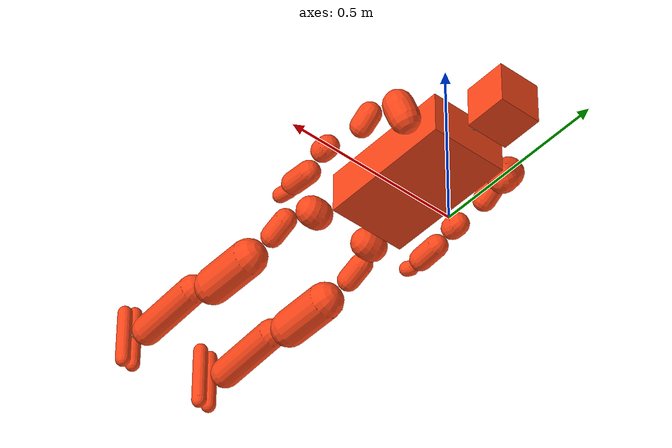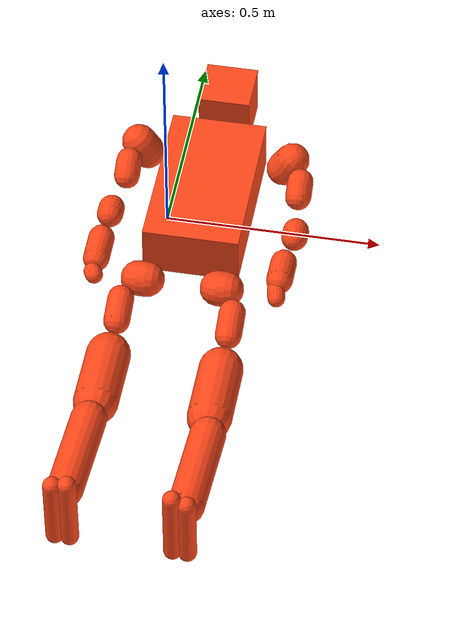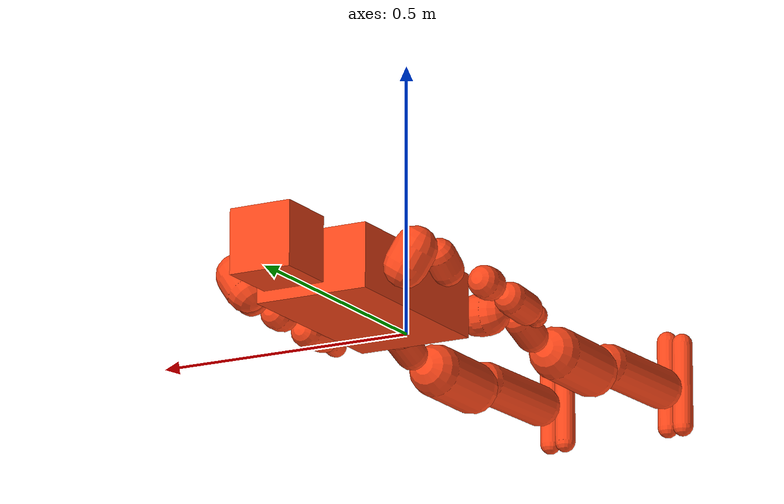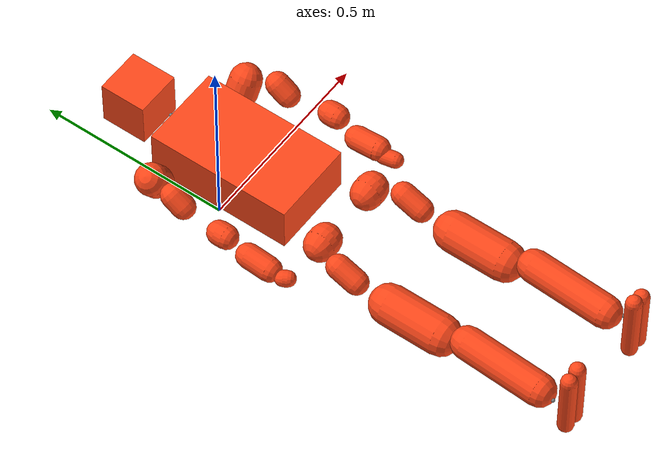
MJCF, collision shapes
<?xml version='1.0' encoding='utf-8'?>
<mujoco model="kbotv2p0_nohands">
  <default>
    <default class="robot">
      <default class="robstride_00">
        <joint armature="0.001" frictionloss="0.1" actuatorfrcrange="-14.0 14.0" />
        <motor ctrlrange="-14.0 14.0" />
      </default>
      <default class="robstride_03">
        <joint armature="0.02" frictionloss="0.2" actuatorfrcrange="-60.0 60.0" />
        <motor ctrlrange="-60.0 60.0" />
      </default>
      <default class="robstride_02">
        <joint armature="0.0042" frictionloss="0.1" actuatorfrcrange="-17.0 17.0" />
        <motor ctrlrange="-17.0 17.0" />
      </default>
      <default class="robstride_04">
        <joint armature="0.04" frictionloss="0.2" actuatorfrcrange="-120.0 120.0" />
        <motor ctrlrange="-120.0 120.0" />
      </default>
      <default class="visual">
        <geom material="visualgeom" contype="0" conaffinity="0" group="2" />
      </default>
      <default class="collision">
        <geom material="collision_material" condim="3" contype="0" conaffinity="1" priority="1" group="1" solref="0.005 1" friction="0.64" />
        <equality solimp="0.99 0.999 1e-05" solref="0.005 1" />
      </default>
    </default>
    <mesh maxhullvert="64" />
  </default>

  <compiler angle="radian" />

  <asset>
    <material name="base_material" rgba="1 0 0 1" />
    <material name="Torso_Side_Right_material" rgba="0.098039 0.098039 0.098039 1" />
    <material name="imu_material" rgba="0.615686 0.811765 0.929412 1" />
    <material name="default_material" rgba="0.7 0.7 0.7 1" />
    <material name="collision_material" rgba="1.0 0.28 0.1 0.9" />
    <mesh name="Torso_Side_Right.stl" file="meshes/Torso_Side_Right.stl" />
    <mesh name="KC_C_104R_PitchHardstopDriven.stl" file="meshes/KC_C_104R_PitchHardstopDriven.stl" />
    <mesh name="RS03_3.stl" file="meshes/RS03_3.stl" />
    <mesh name="KC_C_202R.stl" file="meshes/KC_C_202R.stl" />
    <mesh name="KC_C_401R_R_UpForearmDrive.stl" file="meshes/KC_C_401R_R_UpForearmDrive.stl" />
    <mesh name="KB_C_501X_Right_Bayonet_Adapter_Hard_Stop.stl" file="meshes/KB_C_501X_Right_Bayonet_Adapter_Hard_Stop.stl" />
    <mesh name="imu.stl" file="meshes/imu.stl" />
    <mesh name="KC_C_104L_PitchHardstopDriven.stl" file="meshes/KC_C_104L_PitchHardstopDriven.stl" />
    <mesh name="RS03_6.stl" file="meshes/RS03_6.stl" />
    <mesh name="KC_C_202L.stl" file="meshes/KC_C_202L.stl" />
    <mesh name="KC_C_401L_L_UpForearmDrive.stl" file="meshes/KC_C_401L_L_UpForearmDrive.stl" />
    <mesh name="KB_C_501X_Left_Bayonet_Adapter_Hard_Stop.stl" file="meshes/KB_C_501X_Left_Bayonet_Adapter_Hard_Stop.stl" />
    <mesh name="KC_D_102R_R_Hip_Yoke_Drive.stl" file="meshes/KC_D_102R_R_Hip_Yoke_Drive.stl" />
    <mesh name="RS03_4.stl" file="meshes/RS03_4.stl" />
    <mesh name="KC_D_301R_R_Femur_Lower_Drive.stl" file="meshes/KC_D_301R_R_Femur_Lower_Drive.stl" />
    <mesh name="KC_D_401R_R_Shin_Drive.stl" file="meshes/KC_D_401R_R_Shin_Drive.stl" />
    <mesh name="KB_D_501R_R_LEG_FOOT.collision.stl" file="meshes/KB_D_501R_R_LEG_FOOT.collision.stl" />
    <mesh name="KB_D_501R_R_LEG_FOOT.stl" file="meshes/KB_D_501R_R_LEG_FOOT.stl" />
    <mesh name="KC_D_102L_L_Hip_Yoke_Drive.stl" file="meshes/KC_D_102L_L_Hip_Yoke_Drive.stl" />
    <mesh name="RS03_5.stl" file="meshes/RS03_5.stl" />
    <mesh name="KC_D_301L_L_Femur_Lower_Drive.stl" file="meshes/KC_D_301L_L_Femur_Lower_Drive.stl" />
    <mesh name="KC_D_401L_L_Shin_Drive.stl" file="meshes/KC_D_401L_L_Shin_Drive.stl" />
    <mesh name="KB_D_501L_L_LEG_FOOT.collision.stl" file="meshes/KB_D_501L_L_LEG_FOOT.collision.stl" />
    <mesh name="KB_D_501L_L_LEG_FOOT.stl" file="meshes/KB_D_501L_L_LEG_FOOT.stl" />
  </asset>

  <worldbody>
    <body name="base" pos="0.00000000 0.00000000 0.10000000" quat="0.7071054825112363  -0.7071054825112363 0.0 0.0" childclass="robot">
      <freejoint name="floating_base" />
      <geom name="base_visual" pos="0 -0.0 0" quat="1.0 0.0 0.0 .0" material="base_material" type="sphere" size="0.01" class="visual" />
      <body name="Torso_Side_Right" pos="0 -0.0 0" quat="1.0  0.0 0.0 0.0 ">
        <inertial pos="0.093177 -0.000920 -0.063462" quat="1.0 0.0 0.0 0.0" mass="13.504988" diaginertia="0.485847 0.512347 0.0592" />
        <geom name="Torso_Side_Right_visual" pos="0 0 0" quat="1.0 0.0 0.0 0.0" material="Torso_Side_Right_material" type="mesh" mesh="Torso_Side_Right.stl" class="visual" />

        <!-- Torso collision - GREEN -->
        <geom name="torso_collision_box" type="box" pos="0.093 0 -0.01" size="0.11 0.06 0.19" rgba="1.0 0.28 0.1 0.9" condim="3" contype="0" conaffinity="1" priority="1" group="1" solref="0.005 1" friction="0.64" />

        <body name="KC_C_104R_PitchHardstopDriven" pos="-0.028031 0.000007 0.126021" quat="0.5000001633974483 0.4999999999999733 0.49999983660255165 0.4999999999999733">
          <joint name="dof_right_shoulder_pitch_03" type="hinge" ref="0.0" class="robstride_03" range="-3.141593 1.396263" axis="0 0 1" />
          <inertial pos="-0.004584 0.002745 -0.051222" quat="1.0 0.0 0.0 0.0" mass="0.584848" diaginertia="0.001182 0.001537 0.001416" />
          <geom name="KC_C_104R_PitchHardstopDriven_visual" pos="0 0 0" quat="1.0 0.0 0.0 0.0" material="Torso_Side_Right_material" type="mesh" mesh="KC_C_104R_PitchHardstopDriven.stl" class="visual" />

          <!-- Right shoulder collision - RED -->
          <geom name="right_shoulder_collision_capsule" type="capsule" fromto="-0.015 0 -0.06 0.015 0 -0.04" size="0.04" rgba="1.0 0.28 0.1 0.9" condim="3" contype="0" conaffinity="1" priority="1" group="1" solref="0.005 1" friction="0.64" />

          <body name="RS03_3" pos="-0.024250 0 -0.080000" quat="-1.2247452309842457e-07 -0.7071068967259713 1.22474483074382e-07 -0.7071066656470838">
            <joint name="dof_right_shoulder_roll_03" type="hinge" ref="0.0" class="robstride_03" range="-1.658063 0.349066" axis="0 0 -1" />
            <inertial pos="-0.004944 0.042532 0.027432" quat="1.0 0.0 0.0 0.0" mass="1.676509" diaginertia="0.006831 0.001755 0.007324" />
            <geom name="RS03_3_visual" pos="0 0 0" quat="1.0 0.0 0.0 0.0" material="Torso_Side_Right_material" type="mesh" mesh="RS03_3.stl" class="visual" />

            <!-- Right upper arm collision - RED -->
            <geom name="right_upper_arm_collision_capsule" type="capsule" fromto="0.01 0.07 0.005 0.01 0.10 0.025" size="0.03" rgba="1.0 0.28 0.1 0.9" condim="3" contype="0" conaffinity="1" priority="1" group="1" solref="0.005 1" friction="0.64" />

            <body name="KC_C_202R" pos="-0.013000 0.142000 0.030250" quat="0.7071068967259818 0.7071066656470943 0.0 0.0">
              <joint name="dof_right_shoulder_yaw_02" type="hinge" ref="0.0" class="robstride_02" range="-1.658063 1.658063" axis="0 0 1" />
              <inertial pos="0.003910 -0.004160 -0.101316" quat="1.0 0.0 0.0 0.0" mass="0.743508" diaginertia="0.00241 0.002208 0.000693" />
              <geom name="KC_C_202R_visual" pos="0 0 0" quat="1.0 0.0 0.0 0.0" material="Torso_Side_Right_material" type="mesh" mesh="KC_C_202R.stl" class="visual" />

              <!-- Right arm segment collision - RED -->
              <geom name="right_arm_segment_collision_capsule" type="capsule" fromto="0.01 -0.01 -0.07 0.01 -0.01 -0.09" size="0.03" rgba="1.0 0.28 0.1 0.9" condim="3" contype="0" conaffinity="1" priority="1" group="1" solref="0.005 1" friction="0.64" />

              <body name="KC_C_401R_R_UpForearmDrive" pos="0.018500 -0.010000 -0.137000" quat="0.7071068967259818 0.0 0.7071066656470943 0.0">
                <joint name="dof_right_elbow_02" type="hinge" ref="0.0" class="robstride_02" range="0 2.478368" axis="0 0 -1" />
                <inertial pos="0.061999 0.015867 -0.012446" quat="1.0 0.0 0.0 0.0" mass="0.585204" diaginertia="0.000522 0.001021 0.00102" />
                <geom name="KC_C_401R_R_UpForearmDrive_visual" pos="0 0 0" quat="1.0 0.0 0.0 0.0" material="Torso_Side_Right_material" type="mesh" mesh="KC_C_401R_R_UpForearmDrive.stl" class="visual" />

                <!-- Right forearm collision - RED -->
                <geom name="right_forearm_collision_capsule" type="capsule" fromto="0.02 0.01 -0.015 0.08 0.015 -0.015" size="0.03" rgba="1.0 0.28 0.1 0.9" condim="3" contype="0" conaffinity="1" priority="1" group="1" solref="0.005 1" friction="0.64" />

                <body name="KB_C_501X_Right_Bayonet_Adapter_Hard_Stop" pos="0.103000 0.017350 -0.018000" quat="0.7071068967259818 0.0 -0.7071066656470943 0.0">
                  <joint name="dof_right_wrist_00" type="hinge" ref="0.0" class="robstride_00" range="-1.745329 1.745329" axis="0 0 1" />
                  <inertial pos="0.004187 0.000068 -0.019905" quat="1.0 0.0 0.0 0.0" mass="0.152198" diaginertia="6.1e-05 6.1e-05 8.4e-05" />
                  <geom name="KB_C_501X_Right_Bayonet_Adapter_Hard_Stop_visual" pos="0 0 0" quat="1.0 0.0 0.0 0.0" material="Torso_Side_Right_material" type="mesh" mesh="KB_C_501X_Right_Bayonet_Adapter_Hard_Stop.stl" class="visual" />

                  <!-- Right wrist collision - RED -->
                  <geom name="right_wrist_collision_capsule" type="capsule" fromto="0.002 0 -0.015 0.008 0 -0.025" size="0.02" rgba="1.0 0.28 0.1 0.9" condim="3" contype="0" conaffinity="1" priority="1" group="1" solref="0.005 1" friction="0.64" />
                </body>
              </body>
            </body>
          </body>
        </body>

        <body name="imu" pos="0.121783 0.043292 0.231518" quat="0.7071067715114185 8.22589334037449e-07 0.7071067908607194 8.22589334037449e-07">
            <inertial pos="0.014737 -0.012000 0.003000" quat="1.0 0.0 0.0 0.0" mass="0.005700" diaginertia="1e-06 1e-06 2e-06" />
            <geom name="imu_visual" pos="0 0 0" quat="1.0 0.0 0.0 0.0" material="imu_material" type="mesh" mesh="imu.stl" class="visual" />
            <!-- Just add this single line for head collision -->
            <geom name="head_collision_box" type="box" pos="-0.07 -0.043292 -0.03" size="0.06 0.06 0.06" class="collision" />
            <site name="imu_site" quat="1.0 0.0 0.0 0.0" pos="0.0 0.0 0.0" />
        </body>

        <body name="KC_C_104L_PitchHardstopDriven" pos="0.213969 0.000007 0.126021" quat="0.5000001633974483 -0.4999999999999733 -0.49999983660255165 0.4999999999999733">
          <joint name="dof_left_shoulder_pitch_03" type="hinge" ref="0.0" class="robstride_03" range="-1.396263 3.141593" axis="0 0 1" />
          <inertial pos="-0.004595 -0.002745 -0.051222" quat="1.0 0.0 0.0 0.0" mass="0.584843" diaginertia="0.001182 0.001536 0.001415" />
          <geom name="KC_C_104L_PitchHardstopDriven_visual" pos="0 0 0" quat="1.0 0.0 0.0 0.0" material="Torso_Side_Right_material" type="mesh" mesh="KC_C_104L_PitchHardstopDriven.stl" class="visual" />

          <!-- Left shoulder collision - BLUE -->
          <geom name="left_shoulder_collision_capsule" type="capsule" fromto="-0.015 0 -0.06 0.015 0 -0.04" size="0.04" rgba="1.0 0.28 0.1 0.9" condim="3" contype="0" conaffinity="1" priority="1" group="1" solref="0.005 1" friction="0.64" />

          <body name="RS03_6" pos="-0.024250 0 -0.080000" quat="-1.2247452309842457e-07 -0.7071068967259713 -1.22474483074382e-07 0.7071066656470838">
            <joint name="dof_left_shoulder_roll_03" type="hinge" ref="0.0" class="robstride_03" range="-0.349066 1.658063" axis="0 0 1" />
            <inertial pos="0.004944 -0.042531 -0.027433" quat="1.0 0.0 0.0 0.0" mass="1.676479" diaginertia="0.00683 0.001755 0.007324" />
            <geom name="RS03_6_visual" pos="0 0 0" quat="1.0 0.0 0.0 0.0" material="Torso_Side_Right_material" type="mesh" mesh="RS03_6.stl" class="visual" />

            <!-- Left upper arm collision - BLUE -->
            <geom name="left_upper_arm_collision_capsule" type="capsule" fromto="0.01 -0.10 -0.025 0.01 -0.07 -0.005" size="0.03" rgba="1.0 0.28 0.1 0.9" condim="3" contype="0" conaffinity="1" priority="1" group="1" solref="0.005 1" friction="0.64" />

            <body name="KC_C_202L" pos="0.013000 -0.142000 -0.030250" quat="0.7071068967259818 0.7071066656470943 0.0 0.0">
              <joint name="dof_left_shoulder_yaw_02" type="hinge" ref="0.0" class="robstride_02" range="-1.658063 1.658063" axis="0 0 -1" />
              <inertial pos="0.000925 0.006010 0.113327" quat="1.0 0.0 0.0 0.0" mass="0.579259" diaginertia="0.001537 0.001383 0.000471" />
              <geom name="KC_C_202L_visual" pos="0 0 0" quat="1.0 0.0 0.0 0.0" material="Torso_Side_Right_material" type="mesh" mesh="KC_C_202L.stl" class="visual" />

              <!-- Left arm segment collision - BLUE -->
              <geom name="left_arm_segment_collision_capsule" type="capsule" fromto="0.01 0.01 0.07 0.01 0.01 0.09" size="0.03" rgba="1.0 0.28 0.1 0.9" condim="3" contype="0" conaffinity="1" priority="1" group="1" solref="0.005 1" friction="0.64" />

              <body name="KC_C_401L_L_UpForearmDrive" pos="-0.018500 0.010000 0.137000" quat="-1.2247452309842457e-07 -0.7071068967259713 -1.22474483074382e-07 0.7071066656470838">
                <joint name="dof_left_elbow_02" type="hinge" ref="0.0" class="robstride_02" range="-2.478368 0" axis="0 0 -1" />
                <inertial pos="-0.061998 0.015867 -0.012446" quat="1.0 0.0 0.0 0.0" mass="0.585219" diaginertia="0.000522 0.001021 0.00102" />
                <geom name="KC_C_401L_L_UpForearmDrive_visual" pos="0 0 0" quat="1.0 0.0 0.0 0.0" material="Torso_Side_Right_material" type="mesh" mesh="KC_C_401L_L_UpForearmDrive.stl" class="visual" />

                <!-- Left forearm collision - BLUE -->
                <geom name="left_forearm_collision_capsule" type="capsule" fromto="-0.08 0.01 -0.015 -0.02 0.015 -0.015" size="0.03" rgba="1.0 0.28 0.1 0.9" condim="3" contype="0" conaffinity="1" priority="1" group="1" solref="0.005 1" friction="0.64" />

                <body name="KB_C_501X_Left_Bayonet_Adapter_Hard_Stop" pos="-0.103000 0.017350 -0.018000" quat="-1.2247452309842457e-07 -0.7071068967259713 -1.22474483074382e-07 0.7071066656470838">
                  <joint name="dof_left_wrist_00" type="hinge" ref="0.0" class="robstride_00" range="-1.745329 1.745329" axis="0 0 -1" />
                  <inertial pos="-0.004187 -0.000068 0.019905" quat="1.0 0.0 0.0 0.0" mass="0.152198" diaginertia="6.1e-05 6.1e-05 8.4e-05" />
                  <geom name="KB_C_501X_Left_Bayonet_Adapter_Hard_Stop_visual" pos="0 0 0" quat="1.0 0.0 0.0 0.0" material="Torso_Side_Right_material" type="mesh" mesh="KB_C_501X_Left_Bayonet_Adapter_Hard_Stop.stl" class="visual" />

                  <!-- Left wrist collision - BLUE -->
                  <geom name="left_wrist_collision_capsule" type="capsule" fromto="-0.008 0 -0.005 -0.002 0 0.025" size="0.02" rgba="1.0 0.28 0.1 0.9" condim="3" contype="0" conaffinity="1" priority="1" group="1" solref="0.005 1" friction="0.64" />
                </body>
              </body>
            </body>
          </body>
        </body>

        <body name="KC_D_102R_R_Hip_Yoke_Drive" pos="0.037469 0.000007 -0.284479" quat="0.5000001633974483 0.4999999999999733 0.49999983660255165 0.4999999999999733">
          <joint name="dof_right_hip_pitch_04" type="hinge" ref="0.0" class="robstride_04" range="-2.216568 1.047198" axis="0 0 1" />
          <inertial pos="-0.005644 -0.004227 -0.038197" quat="1.0 0.0 0.0 0.0" mass="0.530428" diaginertia="0.00088 0.001182 0.001271" />
          <geom name="KC_D_102R_R_Hip_Yoke_Drive_visual" pos="0 0 0" quat="1.0 0.0 0.0 0.0" material="Torso_Side_Right_material" type="mesh" mesh="KC_D_102R_R_Hip_Yoke_Drive.stl" class="visual" />

          <!-- Right hip collision - YELLOW -->
          <geom name="right_hip_collision_capsule" type="capsule" fromto="-0.01 -0.01 -0.025 -0.01 -0.01 -0.045" size="0.04" rgba="1.0 0.28 0.1 0.9" condim="3" contype="0" conaffinity="1" priority="1" group="1" solref="0.005 1" friction="0.64" />

          <body name="RS03_4" pos="-0.028250 -0.030000 -0.071000" quat="-1.2247452309842457e-07 0.7071068967259713 1.22474483074382e-07 0.7071066656470838">
            <joint name="dof_right_hip_roll_03" type="hinge" ref="0.0" class="robstride_03" range="-2.268928 0.209440" axis="0 0 -1" />
            <inertial pos="-0.000249 0.058017 0.025580" quat="1.0 0.0 0.0 0.0" mass="2.373184" diaginertia="0.010217 0.003255 0.010667" />
            <geom name="RS03_4_visual" pos="0 0 0" quat="1.0 0.0 0.0 0.0" material="Torso_Side_Right_material" type="mesh" mesh="RS03_4.stl" class="visual" />

            <!-- Right hip connector collision - YELLOW -->
            <geom name="right_hip_connector_collision_capsule" type="capsule" fromto="0 0.05 0.015 0 0.10 0.035" size="0.03" rgba="1.0 0.28 0.1 0.9" condim="3" contype="0" conaffinity="1" priority="1" group="1" solref="0.005 1" friction="0.64" />

            <body name="KC_D_301R_R_Femur_Lower_Drive" pos="0 0.143000 0.024250" quat="0.7071068967259818 -0.7071066656470943 0.0 0.0">
              <joint name="dof_right_hip_yaw_03" type="hinge" ref="0.0" class="robstride_03" range="-1.570796 1.570796" axis="0 0 -1" />
              <inertial pos="-0.001014 -0.013387 0.171456" quat="1.0 0.0 0.0 0.0" mass="2.343635" diaginertia="0.015645 0.014172 0.004016" />
              <geom name="KC_D_301R_R_Femur_Lower_Drive_visual" pos="0 0 0" quat="1.0 0.0 0.0 0.0" material="Torso_Side_Right_material" type="mesh" mesh="KC_D_301R_R_Femur_Lower_Drive.stl" class="visual" />

              <!-- Right thigh collision - YELLOW -->
              <geom name="right_thigh_collision_capsule" type="capsule" fromto="0 -0.02 0.05 0 -0.02 0.19" size="0.05" rgba="1.0 0.28 0.1 0.9" condim="3" contype="0" conaffinity="1" priority="1" group="1" solref="0.005 1" friction="0.64" />

              <body name="KC_D_401R_R_Shin_Drive" pos="0.020500 -0.021000 0.212000" quat="0.5000001633974483 0.4999999999999733 -0.49999983660255165 -0.4999999999999733">
                <joint name="dof_right_knee_04" type="hinge" ref="0.0" class="robstride_04" range="-2.705260 0" axis="0 0 1" />
                <inertial pos="-0.024549 0.104152 0.018182" quat="1.0 0.0 0.0 0.0" mass="1.670592" diaginertia="0.014672 0.002924 0.014592" />
                <geom name="KC_D_401R_R_Shin_Drive_visual" pos="0 0 0" quat="1.0 0.0 0.0 0.0" material="Torso_Side_Right_material" type="mesh" mesh="KC_D_401R_R_Shin_Drive.stl" class="visual" />

                <!-- Right shin collision - YELLOW -->
                <geom name="right_shin_collision_capsule" type="capsule" fromto="-0.03 0.05 0.02 -0.03 0.25 0.03" size="0.04" rgba="1.0 0.28 0.1 0.9" condim="3" contype="0" conaffinity="1" priority="1" group="1" solref="0.005 1" friction="0.64" />

                <body name="KB_D_501R_R_LEG_FOOT" pos="-0.030000 0.290000 0.035100" quat="1.0 0.0 0.0 0.0">
                  <joint name="dof_right_ankle_02" type="hinge" ref="0.0" class="robstride_02" range="-0.226893 1.256637" axis="0 0 1" />
                  <inertial pos="-0.017470 0.032456 -0.015742" quat="1.0 0.0 0.0 0.0" mass="0.620712" diaginertia="0.00037 0.002011 0.001945" />
                  <geom name="KB_D_501R_R_LEG_FOOT_visual" pos="0 0 0" quat="1.0 0.0 0.0 0.0" material="Torso_Side_Right_material" type="mesh" mesh="KB_D_501R_R_LEG_FOOT.stl" class="visual" />
                  <geom name="KB_D_501R_R_LEG_FOOT_collision_capsule_0" type="capsule" quat="1.000000 0.000000 0.000000 0.000000" fromto="-0.113680 0.038000 -0.029915 0.056123 0.038000 -0.029915" size="0.020000 0.105046" material="collision_material" class="collision" />
                  <geom name="KB_D_501R_R_LEG_FOOT_visual_capsule_0" type="capsule" quat="1.000000 0.000000 0.000000 0.000000" fromto="-0.113680 0.038000 -0.029915 0.056123 0.038000 -0.029915" size="0.020000 0.105046" material="Torso_Side_Right_material" class="visual" />
                  <geom name="KB_D_501R_R_LEG_FOOT_collision_capsule_1" type="capsule" quat="1.000000 0.000000 0.000000 0.000000" fromto="-0.105645 0.038000 0.001909 0.056412 0.038000 0.001909" size="0.020000 0.105046" material="collision_material" class="collision" />
                  <geom name="KB_D_501R_R_LEG_FOOT_visual_capsule_1" type="capsule" quat="1.000000 0.000000 0.000000 0.000000" fromto="-0.105645 0.038000 0.001909 0.056412 0.038000 0.001909" size="0.020000 0.105046" material="Torso_Side_Right_material" class="visual" />
                  <site name="right_foot" />
                </body>
              </body>
            </body>
          </body>
        </body>

        <body name="KC_D_102L_L_Hip_Yoke_Drive" pos="0.147969 0.000007 -0.284479" quat="0.5000001633974483 -0.4999999999999733 -0.49999983660255165 0.4999999999999733">
          <joint name="dof_left_hip_pitch_04" type="hinge" ref="0.0" class="robstride_04" range="-1.047198 2.216568" axis="0 0 1" />
          <inertial pos="-0.005644 0.004227 -0.038197" quat="1.0 0.0 0.0 0.0" mass="0.530424" diaginertia="0.00088 0.001182 0.001271" />
          <geom name="KC_D_102L_L_Hip_Yoke_Drive_visual" pos="0 0 0" quat="1.0 0.0 0.0 0.0" material="Torso_Side_Right_material" type="mesh" mesh="KC_D_102L_L_Hip_Yoke_Drive.stl" class="visual" />

          <!-- Left hip collision - PURPLE -->
          <geom name="left_hip_collision_capsule" type="capsule" fromto="-0.01 0.01 -0.025 -0.01 0.01 -0.045" size="0.04" rgba="1.0 0.28 0.1 0.9" condim="3" contype="0" conaffinity="1" priority="1" group="1" solref="0.005 1" friction="0.64" />

          <body name="RS03_5" pos="-0.028250 0.030000 -0.071000" quat="0.7071068967259818 0.0 0.7071066656470943 0.0">
            <joint name="dof_left_hip_roll_03" type="hinge" ref="0.0" class="robstride_03" range="-0.209440 2.268928" axis="0 0 -1" />
            <inertial pos="0.000249 0.058017 0.025578" quat="1.0 0.0 0.0 0.0" mass="2.373239" diaginertia="0.010217 0.003255 0.010667" />
            <geom name="RS03_5_visual" pos="0 0 0" quat="1.0 0.0 0.0 0.0" material="Torso_Side_Right_material" type="mesh" mesh="RS03_5.stl" class="visual" />

            <!-- Left hip connector collision - PURPLE -->
            <geom name="left_hip_connector_collision_capsule" type="capsule" fromto="0 0.05 0.015 0 0.10 0.035" size="0.03" rgba="1.0 0.28 0.1 0.9" condim="3" contype="0" conaffinity="1" priority="1" group="1" solref="0.005 1" friction="0.64" />

            <body name="KC_D_301L_L_Femur_Lower_Drive" pos="0 0.143000 0.024250" quat="0.7071068967259818 -0.7071066656470943 0.0 0.0">
              <joint name="dof_left_hip_yaw_03" type="hinge" ref="0.0" class="robstride_03" range="-1.570796 1.570796" axis="0 0 -1" />
              <inertial pos="0.001013 -0.013386 0.171458" quat="1.0 0.0 0.0 0.0" mass="2.343629" diaginertia="0.015644 0.014172 0.004016" />
              <geom name="KC_D_301L_L_Femur_Lower_Drive_visual" pos="0 0 0" quat="1.0 0.0 0.0 0.0" material="Torso_Side_Right_material" type="mesh" mesh="KC_D_301L_L_Femur_Lower_Drive.stl" class="visual" />

              <!-- Left thigh collision - PURPLE -->
              <geom name="left_thigh_collision_capsule" type="capsule" fromto="0 -0.02 0.05 0 -0.02 0.19" size="0.05" rgba="1.0 0.28 0.1 0.9" condim="3" contype="0" conaffinity="1" priority="1" group="1" solref="0.005 1" friction="0.64" />

              <body name="KC_D_401L_L_Shin_Drive" pos="-0.020500 -0.021000 0.212000" quat="0.5000001633974483 -0.4999999999999733 0.49999983660255165 -0.4999999999999733">
                <joint name="dof_left_knee_04" type="hinge" ref="0.0" class="robstride_04" range="0 2.705260" axis="0 0 1" />
                <inertial pos="-0.024550 -0.104154 0.018183" quat="1.0 0.0 0.0 0.0" mass="1.670535" diaginertia="0.014672 0.002924 0.014592" />
                <geom name="KC_D_401L_L_Shin_Drive_visual" pos="0 0 0" quat="1.0 0.0 0.0 0.0" material="Torso_Side_Right_material" type="mesh" mesh="KC_D_401L_L_Shin_Drive.stl" class="visual" />

                <!-- Left shin collision - PURPLE -->
                <geom name="left_shin_collision_capsule" type="capsule" fromto="-0.03 -0.25 0.02 -0.03 -0.05 0.03" size="0.04" rgba="1.0 0.28 0.1 0.9" condim="3" contype="0" conaffinity="1" priority="1" group="1" solref="0.005 1" friction="0.64" />

                <body name="KB_D_501L_L_LEG_FOOT" pos="-0.030000 -0.290000 0.035100" quat="-1.7320510330969933e-07 -0.999999999999985 -0.0 0.0">
                  <joint name="dof_left_ankle_02" type="hinge" ref="0.0" class="robstride_02" range="-1.256637 0.226893" axis="0 0 -1" />
                  <inertial pos="-0.017470 0.032456 0.015742" quat="1.0 0.0 0.0 0.0" mass="0.620712" diaginertia="0.00037 0.002011 0.001945" />
                  <geom name="KB_D_501L_L_LEG_FOOT_visual" pos="0 0 0" quat="1.0 0.0 0.0 0.0" material="Torso_Side_Right_material" type="mesh" mesh="KB_D_501L_L_LEG_FOOT.stl" class="visual" />
                  <geom name="KB_D_501L_L_LEG_FOOT_collision_capsule_0" type="capsule" quat="1.000000 0.000000 0.000000 0.000000" fromto="-0.100503 0.037962 -0.001909 0.056400 0.037962 -0.001909" size="0.020000 0.105040" material="collision_material" class="collision" />
                  <geom name="KB_D_501L_L_LEG_FOOT_visual_capsule_0" type="capsule" quat="1.000000 0.000000 0.000000 0.000000" fromto="-0.100503 0.037962 -0.001909 0.056400 0.037962 -0.001909" size="0.020000 0.105040" material="Torso_Side_Right_material" class="visual" />
                  <geom name="KB_D_501L_L_LEG_FOOT_collision_capsule_1" type="capsule" quat="1.000000 0.000000 0.000000 0.000000" fromto="-0.113680 0.037962 0.029830 0.055824 0.037962 0.029830" size="0.020000 0.105040" material="collision_material" class="collision" />
                  <geom name="KB_D_501L_L_LEG_FOOT_visual_capsule_1" type="capsule" quat="1.000000 0.000000 0.000000 0.000000" fromto="-0.113680 0.037962 0.029830 0.055824 0.037962 0.029830" size="0.020000 0.105040" material="Torso_Side_Right_material" class="visual" />
                  <site name="left_foot" />
                </body>
              </body>
            </body>
          </body>
        </body>
      </body>
      <site name="base_site" pos="0 0 0" quat="1 0 0 0" />
      <camera name="front_camera" mode="track" fovy="90.0" quat="4.329780281177467e-17 4.329780281177466e-17 0.7071067811865475 0.7071067811865476" pos="0.0 2.0 0.5" />
      <camera name="side_camera" mode="track" fovy="90.0" quat="-0.5 -0.4999999999999999 0.5 0.5000000000000001" pos="-2.0 0.0 0.5" />
    </body>
  </worldbody>

  <actuator>
    <motor name="dof_right_shoulder_pitch_03_ctrl" joint="dof_right_shoulder_pitch_03" class="robstride_03" />
    <motor name="dof_right_shoulder_roll_03_ctrl" joint="dof_right_shoulder_roll_03" class="robstride_03" />
    <motor name="dof_right_shoulder_yaw_02_ctrl" joint="dof_right_shoulder_yaw_02" class="robstride_02" />
    <motor name="dof_right_elbow_02_ctrl" joint="dof_right_elbow_02" class="robstride_02" />
    <motor name="dof_right_wrist_00_ctrl" joint="dof_right_wrist_00" class="robstride_00" />
    <motor name="dof_left_shoulder_pitch_03_ctrl" joint="dof_left_shoulder_pitch_03" class="robstride_03" />
    <motor name="dof_left_shoulder_roll_03_ctrl" joint="dof_left_shoulder_roll_03" class="robstride_03" />
    <motor name="dof_left_shoulder_yaw_02_ctrl" joint="dof_left_shoulder_yaw_02" class="robstride_02" />
    <motor name="dof_left_elbow_02_ctrl" joint="dof_left_elbow_02" class="robstride_02" />
    <motor name="dof_left_wrist_00_ctrl" joint="dof_left_wrist_00" class="robstride_00" />
    <motor name="dof_right_hip_pitch_04_ctrl" joint="dof_right_hip_pitch_04" class="robstride_04" />
    <motor name="dof_right_hip_roll_03_ctrl" joint="dof_right_hip_roll_03" class="robstride_03" />
    <motor name="dof_right_hip_yaw_03_ctrl" joint="dof_right_hip_yaw_03" class="robstride_03" />
    <motor name="dof_right_knee_04_ctrl" joint="dof_right_knee_04" class="robstride_04" />
    <motor name="dof_right_ankle_02_ctrl" joint="dof_right_ankle_02" class="robstride_02" />
    <motor name="dof_left_hip_pitch_04_ctrl" joint="dof_left_hip_pitch_04" class="robstride_04" />
    <motor name="dof_left_hip_roll_03_ctrl" joint="dof_left_hip_roll_03" class="robstride_03" />
    <motor name="dof_left_hip_yaw_03_ctrl" joint="dof_left_hip_yaw_03" class="robstride_03" />
    <motor name="dof_left_knee_04_ctrl" joint="dof_left_knee_04" class="robstride_04" />
    <motor name="dof_left_ankle_02_ctrl" joint="dof_left_ankle_02" class="robstride_02" />
  </actuator>

  <contact />

  <sensor>
    <framepos name="base_site_pos" objtype="site" objname="base_site" />
    <framequat name="base_site_quat" objtype="site" objname="base_site" />
    <framelinvel name="base_site_linvel" objtype="site" objname="base_site" />
    <frameangvel name="base_site_angvel" objtype="site" objname="base_site" />
    <velocimeter name="base_site_vel" site="base_site" />
    <accelerometer name="imu_acc" site="imu_site" noise="0.01" />
    <gyro name="imu_gyro" site="imu_site" noise="0.01" />
    <magnetometer name="imu_mag" site="imu_site" noise="0.05" />
    <framepos name="imu_site_pos" objtype="site" objname="imu_site" />
    <framequat name="imu_site_quat" objtype="site" objname="imu_site" />
    <framelinvel name="imu_site_linvel" objtype="site" objname="imu_site" />
    <frameangvel name="imu_site_angvel" objtype="site" objname="imu_site" />
    <velocimeter name="imu_site_vel" site="imu_site" />
    <force name="left_foot_force" site="left_foot" />
    <force name="right_foot_force" site="right_foot" />
  </sensor>
</mujoco>
